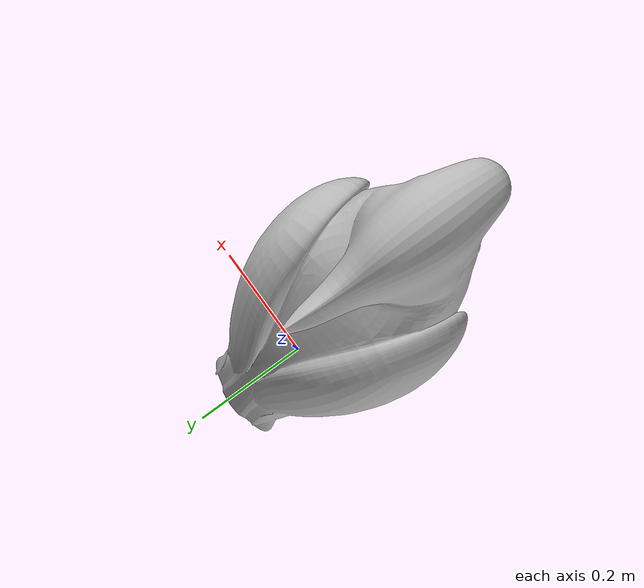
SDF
<?xml version="1.0" ?>
<sdf version="1.6">
  <model name="extra_bird1">
    <static>true</static>
    <link name="link">
      <visual name="visual">
        <geometry>
          <mesh>
            <scale>0.02 0.02 0.02</scale>
            <uri>model://extra_bird1/meshes/12259_Bird_v1_L2.dae</uri>
          </mesh>
  	    </geometry>
        <material>
          <script>
            <uri>model://extra_bird1/materials/scripts</uri>
            <uri>model://extra_bird1/materials/textures</uri>
            <name>extra_bird1/image_1</name>
          </script>
        </material>
      </visual>
    </link>
  </model>
</sdf>
